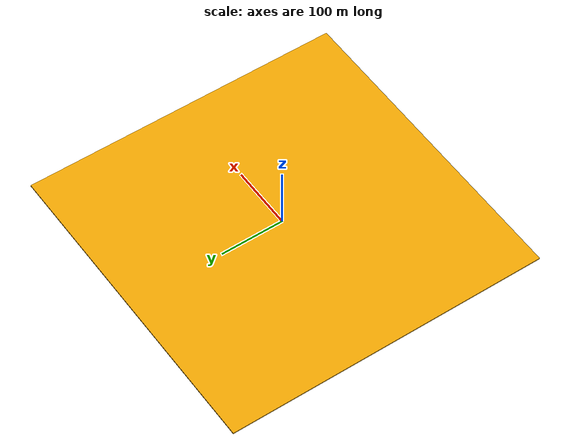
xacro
<robot xmlns:xacro="http://www.ros.org/wiki/xacro" name="planar_world" >

  <link name="world_link">
    <!--
    Inertia data is arbitrary. Its purpose here is to evade the
         joint-welding checks in RigidBodyTree.cpp. The resulting world-object
         joint should be a full 6DF floating joint.
    -->
    <visual>
      <origin xyz="0 0 -1.0" rpy="0 0 0" />
      <geometry>
        <box size="500.0 500.0 2.0" />
      </geometry>
    </visual>
  </link>

</robot>
